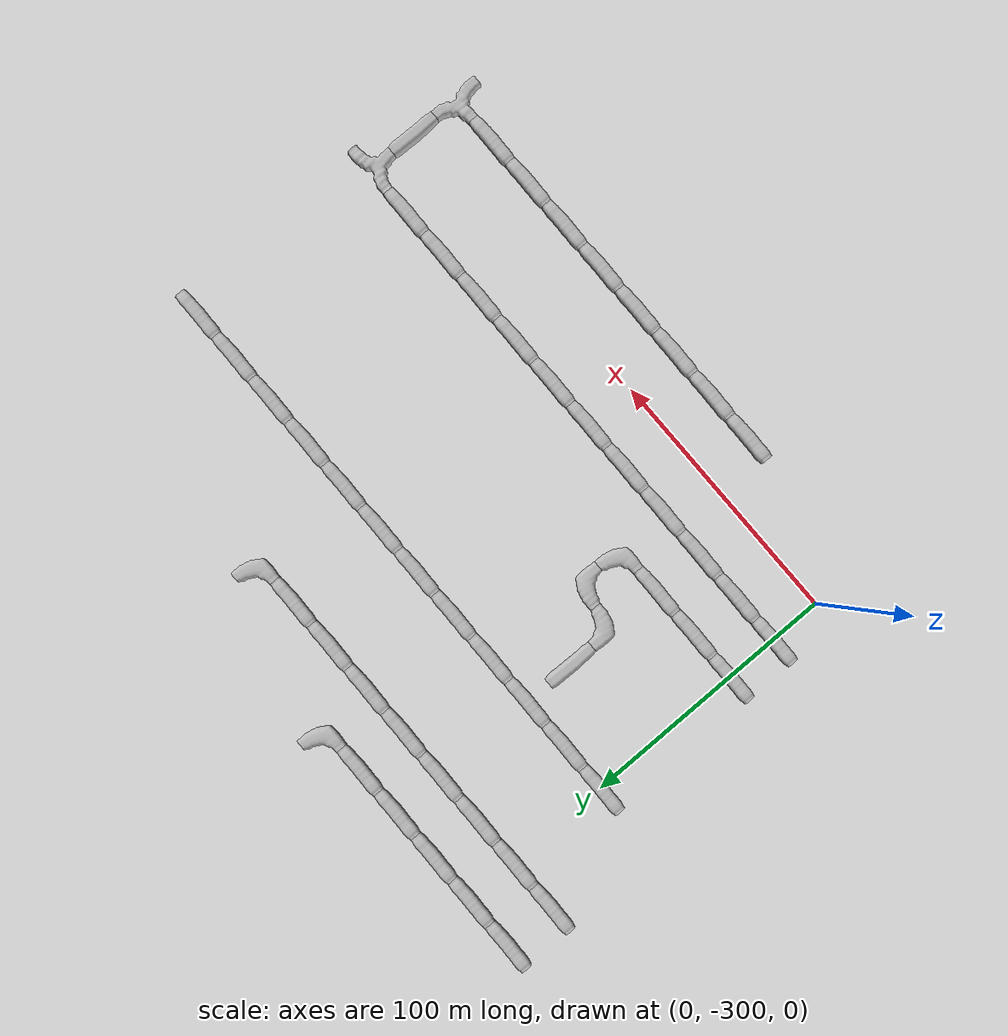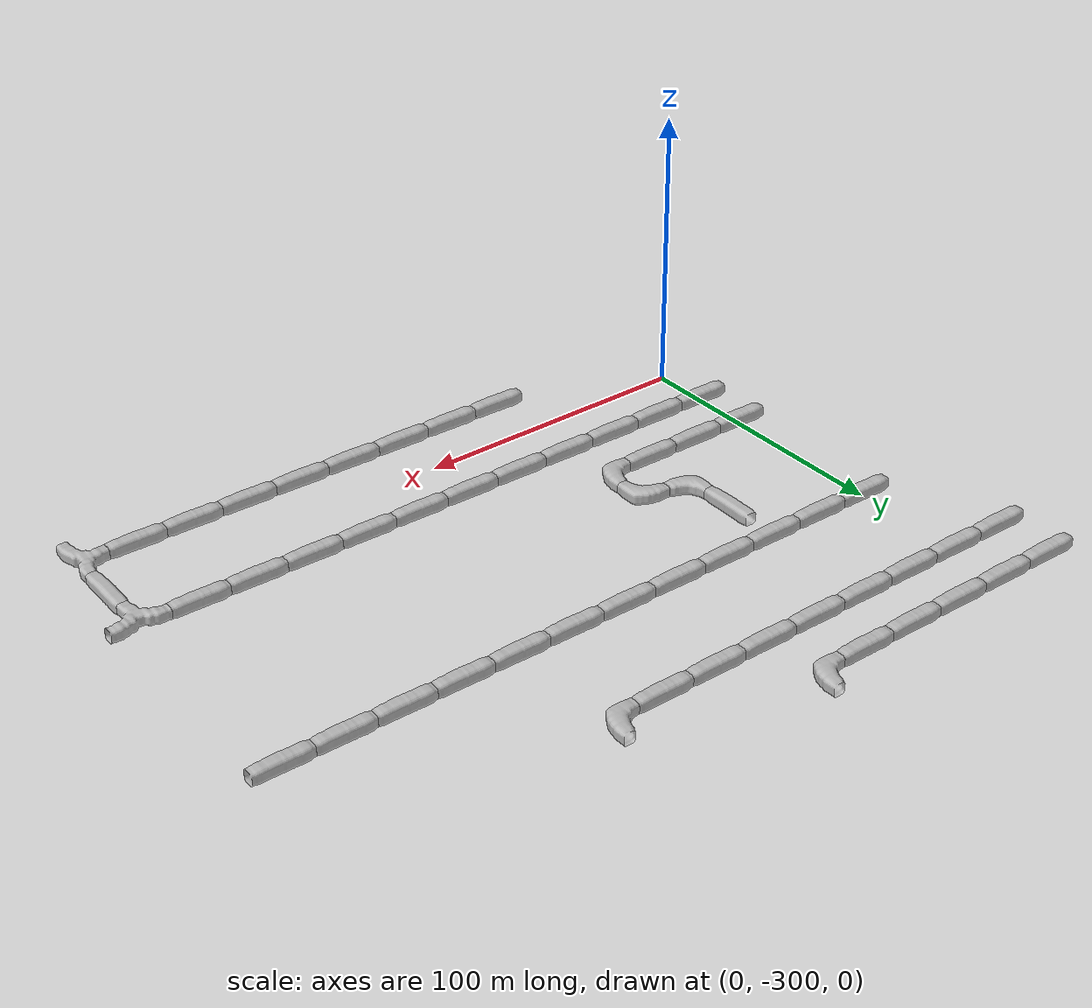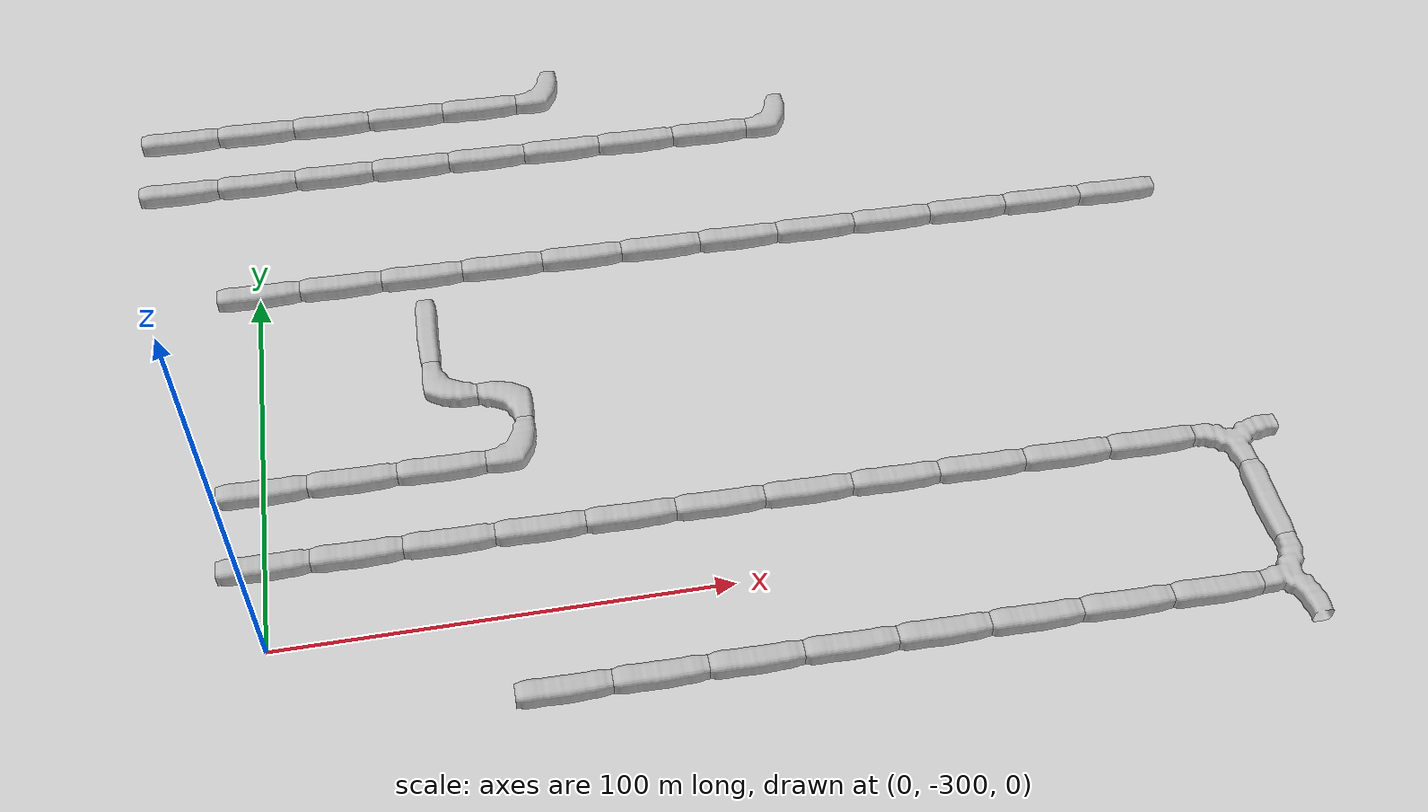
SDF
<sdf version="1.6">
 <world name="cave_32000_64">
  <include>
   <static>true</static>
   <name>cave_0_-10</name>
   <pose>0 -200 0 0 0 1.5707963267948966</pose>
   <uri>model://cave_straight_20m</uri>
  </include>
  <include>
   <static>true</static>
   <name>cave_1_-10</name>
   <pose>20 -200 0 0 0 1.5707963267948966</pose>
   <uri>model://cave_straight_20m</uri>
  </include>
  <include>
   <static>true</static>
   <name>cave_2_-10</name>
   <pose>40 -200 0 0 0 1.5707963267948966</pose>
   <uri>model://cave_straight_20m</uri>
  </include>
  <include>
   <static>true</static>
   <name>cave_3_-10</name>
   <pose>60 -200 0 0 0 1.5707963267948966</pose>
   <uri>model://cave_straight_20m</uri>
  </include>
  <include>
   <static>true</static>
   <name>cave_4_-10</name>
   <pose>80 -200 0 0 0 1.5707963267948966</pose>
   <uri>model://cave_straight_20m</uri>
  </include>
  <include>
   <static>true</static>
   <name>cave_5_-10</name>
   <pose>100 -200 0 0 0 1.5707963267948966</pose>
   <uri>model://cave_straight_20m</uri>
  </include>
  <include>
   <static>true</static>
   <name>cave_6_-10</name>
   <pose>120 -200 0 0 0 1.5707963267948966</pose>
   <uri>model://cave_straight_20m</uri>
  </include>
  <include>
   <static>true</static>
   <name>cave_7_-10</name>
   <pose>140 -200 0 0 0 1.5707963267948966</pose>
   <uri>model://cave_straight_20m</uri>
  </include>
  <include>
   <static>true</static>
   <name>cave_8_-10</name>
   <pose>160 -200 0 0 0 1.5707963267948966</pose>
   <uri>model://cave_straight_20m</uri>
  </include>
  <include>
   <static>true</static>
   <name>cave_9_-10</name>
   <pose>180 -200 0 0 0 1.5707963267948966</pose>
   <uri>model://cave_straight_20m</uri>
  </include>
  <include>
   <static>true</static>
   <name>cave_10_-10</name>
   <pose>200 -200 0 0 0 1.5707963267948966</pose>
   <uri>model://cave_straight_20m</uri>
  </include>
  <include>
   <static>true</static>
   <name>cave_11_-10</name>
   <pose>220 -200 0 0 0 1.5707963267948966</pose>
   <uri>model://cave_straight_20m</uri>
  </include>
  <include>
   <static>true</static>
   <name>cave_3_-16</name>
   <pose>60 -320 0 0 0 1.5707963267948966</pose>
   <uri>model://cave_straight_20m</uri>
  </include>
  <include>
   <static>true</static>
   <name>cave_4_-16</name>
   <pose>80 -320 0 0 0 1.5707963267948966</pose>
   <uri>model://cave_straight_20m</uri>
  </include>
  <include>
   <static>true</static>
   <name>cave_5_-16</name>
   <pose>100 -320 0 0 0 1.5707963267948966</pose>
   <uri>model://cave_straight_20m</uri>
  </include>
  <include>
   <static>true</static>
   <name>cave_6_-16</name>
   <pose>120 -320 0 0 0 1.5707963267948966</pose>
   <uri>model://cave_straight_20m</uri>
  </include>
  <include>
   <static>true</static>
   <name>cave_7_-16</name>
   <pose>140 -320 0 0 0 1.5707963267948966</pose>
   <uri>model://cave_straight_20m</uri>
  </include>
  <include>
   <static>true</static>
   <name>cave_8_-16</name>
   <pose>160 -320 0 0 0 1.5707963267948966</pose>
   <uri>model://cave_straight_20m</uri>
  </include>
  <include>
   <static>true</static>
   <name>cave_9_-16</name>
   <pose>180 -320 0 0 0 1.5707963267948966</pose>
   <uri>model://cave_straight_20m</uri>
  </include>
  <include>
   <static>true</static>
   <name>cave_10_-16</name>
   <pose>200 -320 0 0 0 1.5707963267948966</pose>
   <uri>model://cave_straight_20m</uri>
  </include>
  <include>
   <static>true</static>
   <name>cave_11_-16</name>
   <pose>220 -320 0 0 0 1.5707963267948966</pose>
   <uri>model://cave_3way_20m</uri>
  </include>
  <include>
   <static>true</static>
   <name>cave_11_-15</name>
   <pose>220 -300 0 0 0 0.0</pose>
   <uri>model://cave_straight_20m</uri>
  </include>
  <include>
   <static>true</static>
   <name>cave_11_-14</name>
   <pose>220 -280 0 0 0 3.141592653589793</pose>
   <uri>model://cave_3way_20m</uri>
  </include>
  <include>
   <static>true</static>
   <name>cave_10_-14</name>
   <pose>200 -280 0 0 0 1.5707963267948966</pose>
   <uri>model://cave_straight_20m</uri>
  </include>
  <include>
   <static>true</static>
   <name>cave_9_-14</name>
   <pose>180 -280 0 0 0 1.5707963267948966</pose>
   <uri>model://cave_straight_20m</uri>
  </include>
  <include>
   <static>true</static>
   <name>cave_8_-14</name>
   <pose>160 -280 0 0 0 1.5707963267948966</pose>
   <uri>model://cave_straight_20m</uri>
  </include>
  <include>
   <static>true</static>
   <name>cave_7_-14</name>
   <pose>140 -280 0 0 0 1.5707963267948966</pose>
   <uri>model://cave_straight_20m</uri>
  </include>
  <include>
   <static>true</static>
   <name>cave_6_-14</name>
   <pose>120 -280 0 0 0 1.5707963267948966</pose>
   <uri>model://cave_straight_20m</uri>
  </include>
  <include>
   <static>true</static>
   <name>cave_5_-14</name>
   <pose>100 -280 0 0 0 1.5707963267948966</pose>
   <uri>model://cave_straight_20m</uri>
  </include>
  <include>
   <static>true</static>
   <name>cave_4_-14</name>
   <pose>80 -280 0 0 0 1.5707963267948966</pose>
   <uri>model://cave_straight_20m</uri>
  </include>
  <include>
   <static>true</static>
   <name>cave_3_-14</name>
   <pose>60 -280 0 0 0 1.5707963267948966</pose>
   <uri>model://cave_straight_20m</uri>
  </include>
  <include>
   <static>true</static>
   <name>cave_2_-14</name>
   <pose>40 -280 0 0 0 1.5707963267948966</pose>
   <uri>model://cave_straight_20m</uri>
  </include>
  <include>
   <static>true</static>
   <name>cave_1_-14</name>
   <pose>20 -280 0 0 0 1.5707963267948966</pose>
   <uri>model://cave_straight_20m</uri>
  </include>
  <include>
   <static>true</static>
   <name>cave_0_-14</name>
   <pose>0 -280 0 0 0 1.5707963267948966</pose>
   <uri>model://cave_straight_20m</uri>
  </include>
  <include>
   <static>true</static>
   <name>cave_0_-13</name>
   <pose>0 -260 0 0 0 1.5707963267948966</pose>
   <uri>model://cave_straight_20m</uri>
  </include>
  <include>
   <static>true</static>
   <name>cave_1_-13</name>
   <pose>20 -260 0 0 0 1.5707963267948966</pose>
   <uri>model://cave_straight_20m</uri>
  </include>
  <include>
   <static>true</static>
   <name>cave_2_-13</name>
   <pose>40 -260 0 0 0 1.5707963267948966</pose>
   <uri>model://cave_straight_20m</uri>
  </include>
  <include>
   <static>true</static>
   <name>cave_3_-13</name>
   <pose>60 -260 0 0 0 1.5707963267948966</pose>
   <uri>model://cave_L_20m</uri>
  </include>
  <include>
   <static>true</static>
   <name>cave_3_-12</name>
   <pose>60 -240 0 0 0 3.141592653589793</pose>
   <uri>model://cave_L_20m</uri>
  </include>
  <include>
   <static>true</static>
   <name>cave_2_-12</name>
   <pose>40 -240 0 0 0 0.0</pose>
   <uri>model://cave_L_20m</uri>
  </include>
  <include>
   <static>true</static>
   <name>cave_2_-11</name>
   <pose>40 -220 0 0 0 0.0</pose>
   <uri>model://cave_straight_20m</uri>
  </include>
  <include>
   <static>true</static>
   <name>cave_-1_-8</name>
   <pose>-20 -160 0 0 0 1.5707963267948966</pose>
   <uri>model://cave_straight_20m</uri>
  </include>
  <include>
   <static>true</static>
   <name>cave_0_-8</name>
   <pose>0 -160 0 0 0 1.5707963267948966</pose>
   <uri>model://cave_straight_20m</uri>
  </include>
  <include>
   <static>true</static>
   <name>cave_1_-8</name>
   <pose>20 -160 0 0 0 1.5707963267948966</pose>
   <uri>model://cave_straight_20m</uri>
  </include>
  <include>
   <static>true</static>
   <name>cave_2_-8</name>
   <pose>40 -160 0 0 0 1.5707963267948966</pose>
   <uri>model://cave_straight_20m</uri>
  </include>
  <include>
   <static>true</static>
   <name>cave_3_-8</name>
   <pose>60 -160 0 0 0 1.5707963267948966</pose>
   <uri>model://cave_straight_20m</uri>
  </include>
  <include>
   <static>true</static>
   <name>cave_4_-8</name>
   <pose>80 -160 0 0 0 1.5707963267948966</pose>
   <uri>model://cave_straight_20m</uri>
  </include>
  <include>
   <static>true</static>
   <name>cave_5_-8</name>
   <pose>100 -160 0 0 0 1.5707963267948966</pose>
   <uri>model://cave_straight_20m</uri>
  </include>
  <include>
   <static>true</static>
   <name>cave_6_-8</name>
   <pose>120 -160 0 0 0 1.5707963267948966</pose>
   <uri>model://cave_straight_20m</uri>
  </include>
  <include>
   <static>true</static>
   <name>cave_7_-8</name>
   <pose>140 -160 0 0 0 1.5707963267948966</pose>
   <uri>model://cave_L_20m</uri>
  </include>
  <include>
   <static>true</static>
   <name>cave_4_-7</name>
   <pose>80 -140 0 0 0 1.5707963267948966</pose>
   <uri>model://cave_L_20m</uri>
  </include>
  <include>
   <static>true</static>
   <name>cave_3_-7</name>
   <pose>60 -140 0 0 0 1.5707963267948966</pose>
   <uri>model://cave_straight_20m</uri>
  </include>
  <include>
   <static>true</static>
   <name>cave_2_-7</name>
   <pose>40 -140 0 0 0 1.5707963267948966</pose>
   <uri>model://cave_straight_20m</uri>
  </include>
  <include>
   <static>true</static>
   <name>cave_1_-7</name>
   <pose>20 -140 0 0 0 1.5707963267948966</pose>
   <uri>model://cave_straight_20m</uri>
  </include>
  <include>
   <static>true</static>
   <name>cave_0_-7</name>
   <pose>0 -140 0 0 0 1.5707963267948966</pose>
   <uri>model://cave_straight_20m</uri>
  </include>
  <include>
   <static>true</static>
   <name>cave_-1_-7</name>
   <pose>-20 -140 0 0 0 1.5707963267948966</pose>
   <uri>model://cave_straight_20m</uri>
  </include>
 </world>
</sdf>
